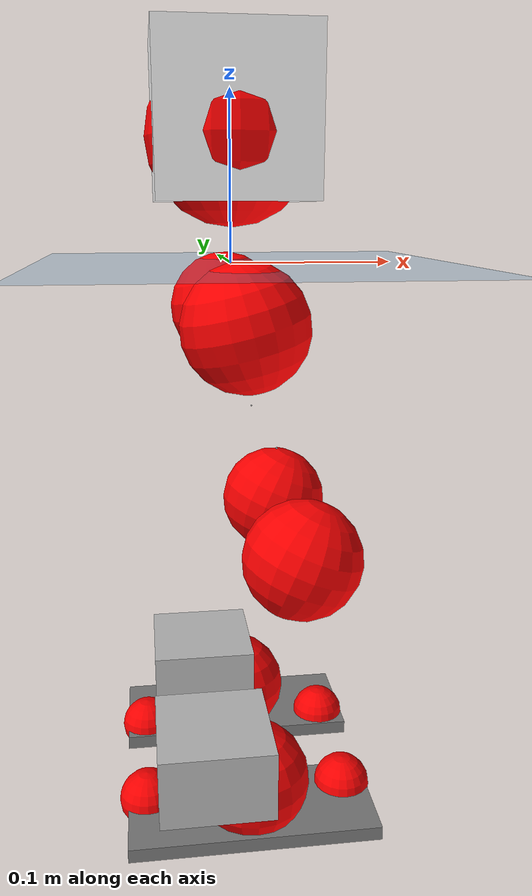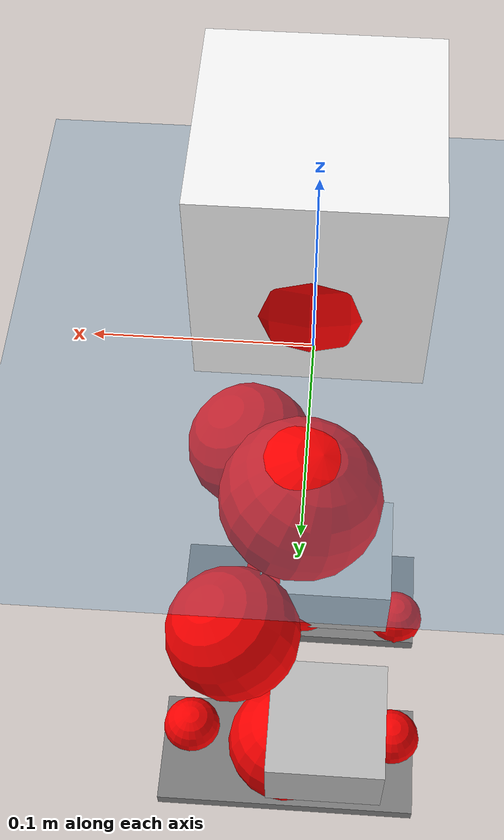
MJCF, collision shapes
<mujoco model="pi_12dof_release_v1">
  <compiler angle="radian" assetdir="assets" balanceinertia="true" inertiafromgeom="false"/>

  <option timestep="0.005" density="1.2" viscosity="2e-05"/>

  <size nkey="1"/>

  <visual>
    <quality shadowsize="8192"/>
    <map shadowclip="0.5"/>
  </visual>

  <default>
    <default class="/">
      <joint armature="0.01" damping="0.01" frictionloss="0.01"/>
      <geom contype="0" conaffinity="0" group="1" solref="-1000 -80"/>
      <site size="0.01 0.005 0.005" group="5"/>
      <general forcelimited="true" biastype="affine" gainprm="20" biasprm="0 -20 -0.5"/>
      <default class="foot">
        <geom size="0.0845 0.036 0.005" type="box" condim="6" group="4" priority="1" friction="0.9 0.2 0.2" solimp="0.015 1 0.005"/>
      </default>
      <default class="reward_collision_sphere">
        <geom group="5" rgba="1 0 0 1"/>
      </default>
    </default>
  </default>

  <asset>
    <texture type="skybox" colorspace="auto" name="//unnamed_texture_0" builtin="gradient" rgb1="0.95 0.95 0.95" rgb2="0.95 0.95 0.95" width="100" height="600"/>
    <texture type="2d" colorspace="auto" name="texplane" builtin="checker" rgb1="0.345 0.575 0.748" rgb2="0.345 0.575 0.748" markrgb="1 1 1" width="512" height="512"/>
    <material name="MatPlane" class="/" texture="texplane" texuniform="true" texrepeat="2 2" specular="0.9"/>
    <mesh name="baselink_1" class="/" file="baselink_1.STL"/>
    <mesh name="r_hip_pitch_link" class="/" file="r_hip_pitch_link.STL"/>
    <mesh name="r_hip_roll_link" class="/" file="r_hip_roll_link.STL"/>
    <mesh name="r_thigh_link" class="/" file="r_thigh_link.STL"/>
    <mesh name="r_calf_link" class="/" file="r_calf_link.STL"/>
    <mesh name="r_ankle_pitch_link" class="/" file="r_ankle_pitch_link.STL"/>
    <mesh name="r_ankle_roll_link" class="/" file="r_ankle_roll_link.STL"/>
    <mesh name="l_hip_pitch_link" class="/" file="l_hip_pitch_link.STL"/>
    <mesh name="l_hip_roll_link" class="/" file="l_hip_roll_link.STL"/>
    <mesh name="l_thigh_link" class="/" file="l_thigh_link.STL"/>
    <mesh name="l_calf_link" class="/" file="l_calf_link.STL"/>
    <mesh name="l_ankle_pitch_link" class="/" file="l_ankle_pitch_link.STL"/>
    <mesh name="l_ankle_roll_link" class="/" file="l_ankle_roll_link.STL"/>
  </asset>

  <worldbody>
    <geom name="floor" class="/" size="100 100 0.125" type="plane" group="0" material="MatPlane"/>
    <light name="toplight_shadow" class="/" pos="0 0 5" dir="0.0990148 0.0990148 -0.990148" type="directional" ambient="0.04 0.04 0.04" diffuse="0.55 0.55 0.55" specular="0.12 0.12 0.12"/>
    <light name="toplight_fill" class="/" pos="0 0 5" dir="0.0990148 0.0990148 -0.990148" type="directional" castshadow="false" ambient="0.04 0.04 0.04" diffuse="0.3 0.3 0.3" specular="0.08 0.08 0.08"/>
    <body name="trunk" pos="0.000736498 -0.000741939 7.98692e-05" quat="1 3.01638e-05 1.2621e-05 -9.17614e-05">
      <inertial pos="0.00202979 -0.000453833 0.0418307" quat="0.694124 0.0141036 0.0105001 0.719641" mass="1.74738" diaginertia="0.00910241 0.00271154 0.00500092"/>
      <joint name="//unnamed_joint_0" type="free"/>
      <geom name="//unnamed_geom_1" class="/" type="mesh" density="0" rgba="1 1 1 1" mesh="baselink_1"/>
      <geom name="//unnamed_geom_2" class="/" size="0.0467797 0.0467797 0.0467797" pos="0 0 0.082915" type="box" rgba="1 1 1 1"/>
      <geom name="//unnamed_geom_3" class="reward_collision_sphere" size="0.0514577" pos="0 0 0.0725506"/>
      <site name="imu" class="/" pos="-0.00016533 -0.00240844 -0.00673159" size="0.00935594"/>
      <camera name="track" class="/" pos="0 -1.57427 0" quat="0.707107 0.707107 0 0" mode="trackcom"/>
      <camera name="ego_camera" class="/" pos="0.0737407 0 0.186559" quat="-0.5 -0.5 0.5 0.5"/>
      <body name="r_hip_pitch_link" pos="0.000491713 -0.0175225 -0.0331418" quat="0.992207 -0.000403322 -0.124604 1.31169e-05">
        <inertial pos="1.23591e-05 -0.0431454 -8.32372e-06" quat="-0.019708 0.705817 -0.0280887 0.707563" mass="0.302881" diaginertia="9.96362e-05 2.98866e-05 9.92381e-05"/>
        <joint name="r_hip_pitch_joint" class="/" pos="0 0 0" axis="0.00031388 -0.999967 -0.00813104" range="-1.7252 1.237" armature="0.00933899" damping="0.0188389" frictionloss="0.00931689"/>
        <geom name="//unnamed_geom_4" class="/" type="mesh" density="0" rgba="0.75294 0.75294 0.75294 1" mesh="r_hip_pitch_link"/>
        <geom name="//unnamed_geom_5" class="/" size="0.000467797 0.000467797 0.000467797" type="box" rgba="0.75294 0.75294 0.75294 1"/>
        <body name="r_hip_roll_link" pos="0.000889224 -0.0437296 0.000645043" quat="1 8.75467e-05 -0.000398665 0.000247758">
          <inertial pos="-0.00126024 -0.000437382 -0.0654621" quat="0.709093 -0.079635 -0.0807673 0.695933" mass="0.318961" diaginertia="0.000307973 8.4614e-05 0.000155048"/>
          <joint name="r_hip_roll_joint" class="/" pos="0 0 0" axis="-0.999999 -0.00101214 -0.000181394" range="-0.109422 0.507245" armature="0.00908057" damping="0.0110872" frictionloss="0.00952078"/>
          <geom name="//unnamed_geom_6" class="/" type="mesh" density="0" rgba="0.75294 0.75294 0.75294 1" mesh="r_hip_roll_link"/>
          <geom name="//unnamed_geom_7" class="/" size="0.000467797 0.000467797 0.000467797" type="box" rgba="0.75294 0.75294 0.75294 1"/>
          <geom name="//unnamed_geom_8" class="reward_collision_sphere" size="0.0374237"/>
          <body name="r_thigh_link" pos="-0.000216945 -0.000757992 -0.0720287" quat="1 -2.75503e-05 5.4939e-05 -9.80148e-05">
            <inertial pos="-0.000613708 0.00110086 -0.0490826" quat="0.737454 0.675375 -0.00274894 -0.00477973" mass="0.0903893" diaginertia="0.00011385 2.83475e-05 6.82404e-05"/>
            <joint name="r_thigh_joint" class="/" pos="0 0 0" axis="0.00123615 0.00175525 -0.999998" range="-0.309173 0.61864" armature="0.00945065" damping="0.00470777" frictionloss="0.00979904"/>
            <geom name="//unnamed_geom_9" class="/" type="mesh" density="0" rgba="0.75294 0.75294 0.75294 1" mesh="r_thigh_link"/>
            <geom name="//unnamed_geom_10" class="/" size="0.000467797 0.000467797 0.000467797" type="box" rgba="0.75294 0.75294 0.75294 1"/>
            <body name="r_calf_link" pos="-0.0015755 6.56241e-05 -0.0732271" quat="0.947657 -2.05304e-06 0.319291 1.95792e-05">
              <inertial pos="0.000893545 -0.00119131 -0.073577" quat="0.999989 0.000836833 0.00095305 0.0046037" mass="0.680992" diaginertia="0.00329448 0.00108258 0.000212175"/>
              <joint name="r_calf_joint" class="/" pos="0 0 0" axis="0.00274885 -0.999964 0.00806648" range="-1.65348 0.647502" armature="0.00892458" damping="0.00731971" frictionloss="0.00910895"/>
              <geom name="//unnamed_geom_11" class="/" type="mesh" density="0" rgba="0.75294 0.75294 0.75294 1" mesh="r_calf_link"/>
              <geom name="//unnamed_geom_12" class="/" size="0.000467797 0.000467797 0.000467797" type="box" rgba="0.75294 0.75294 0.75294 1"/>
              <geom name="//unnamed_geom_13" class="reward_collision_sphere" size="0.0374237"/>
              <body name="r_ankle_pitch_link" pos="0.000722498 0.00143636 -0.145711" quat="0.980056 -3.25022e-05 -0.198719 -7.54779e-06">
                <inertial pos="0.00572751 0.00470271 -1.91824e-05" quat="0.00237295 0.707027 -0.00243437 0.707179" mass="0.14323" diaginertia="0.000280466 6.70989e-05 0.00014249"/>
                <joint name="r_ankle_pitch_joint" class="/" pos="0 0 0" axis="-0.00109192 -0.999998 0.00193149" range="-1.31524 0.500584" armature="0.0091892" damping="0.00465769" frictionloss="0.00954514"/>
                <geom name="//unnamed_geom_14" class="/" type="mesh" density="0" rgba="0.75294 0.75294 0.75294 1" mesh="r_ankle_pitch_link"/>
                <geom name="//unnamed_geom_15" class="/" size="0.0364882 0.0374237 0.0233898" type="box" rgba="0.75294 0.75294 0.75294 1"/>
                <body name="r_ankle_roll_link" pos="0.0744986 0.00174561 0.000692946" quat="1 -0.00063505 -1.65795e-05 -0.000479326">
                  <inertial pos="-0.0217656 0.000841194 -0.0148388" quat="0.561679 0.43089 0.432501 0.558384" mass="0.420222" diaginertia="0.00102044 0.000311463 0.000342813"/>
                  <joint name="r_ankle_roll_joint" class="/" pos="0 0 0" axis="-0.999979 -0.00655187 -5.4824e-05" range="-0.148613 0.140594" armature="0.00940435" damping="0.0125429" frictionloss="0.00911008"/>
                  <geom name="//unnamed_geom_16" class="/" type="mesh" density="0" rgba="0.75294 0.75294 0.75294 1" mesh="r_ankle_roll_link"/>
                  <geom name="//unnamed_geom_17" class="/" type="mesh" rgba="0.75294 0.75294 0.75294 1" mesh="r_ankle_roll_link"/>
                  <geom name="right_foot" class="foot" size="0.0807478 0.0341827 0.00461312" pos="-0.0501437 0 -0.0456033"/>
                  <geom name="//unnamed_geom_19" class="reward_collision_sphere" size="0.0374237" pos="-0.0491605 0 -0.0207288"/>
                  <geom name="//unnamed_geom_20" class="reward_collision_sphere" size="0.0187119" pos="0.0147481 0.0157427 -0.0414575"/>
                  <geom name="//unnamed_geom_21" class="reward_collision_sphere" size="0.0187119" pos="-0.117985 0.0157427 -0.0414575"/>
                  <site name="right_foot" class="foot" pos="-0.0501437 0 -0.0456033" size="0.00935594"/>
                </body>
              </body>
            </body>
          </body>
        </body>
      </body>
      <body name="l_hip_pitch_link" pos="0.00165133 0.0185856 -0.0339917" quat="0.992184 -8.46705e-05 -0.12478 0.000175193">
        <inertial pos="0.00202112 0.0405348 -0.000270873" quat="-0.0374988 0.703843 0.0294991 0.708751" mass="0.322426" diaginertia="0.000117683 3.16766e-05 0.000119558"/>
        <joint name="l_hip_pitch_joint" class="/" pos="0 0 0" axis="-0.00825834 0.999964 0.00167524" range="-1.26709 1.76323" armature="0.00873915" damping="0.0137845" frictionloss="0.00890151"/>
        <geom name="//unnamed_geom_22" class="/" type="mesh" density="0" rgba="0.75294 0.75294 0.75294 1" mesh="l_hip_pitch_link"/>
        <geom name="//unnamed_geom_23" class="/" size="0.000467797 0.000467797 0.000467797" type="box" rgba="0.75294 0.75294 0.75294 1"/>
        <body name="l_hip_roll_link" pos="-0.000573209 0.0433044 0.000447623" quat="1 -0.000173659 -0.000389128 0.0002462">
          <inertial pos="-0.00189801 0.00136261 -0.0634727" quat="0.699441 -0.0753211 -0.078283 0.706386" mass="0.318215" diaginertia="0.000306969 8.32919e-05 0.000149848"/>
          <joint name="l_hip_roll_joint" class="/" pos="0 0 0" axis="-0.999982 0.00565713 -0.00203623" range="-0.510174 0.0992101" armature="0.00946173" damping="0.00627176" frictionloss="0.009779"/>
          <geom name="//unnamed_geom_24" class="/" type="mesh" density="0" rgba="0.75294 0.75294 0.75294 1" mesh="l_hip_roll_link"/>
          <geom name="//unnamed_geom_25" class="/" size="0.000467797 0.000467797 0.000467797" type="box" rgba="0.75294 0.75294 0.75294 1"/>
          <geom name="//unnamed_geom_26" class="reward_collision_sphere" size="0.0374237"/>
          <body name="l_thigh_link" pos="0.000371191 0.000141468 -0.0735085" quat="1 -0.000507384 0.000502893 -0.00020402">
            <inertial pos="0.000918734 -0.00154325 -0.0476113" quat="0.673537 0.739142 -0.00367975 0.00171061" mass="0.0914945" diaginertia="0.000115466 2.90142e-05 6.92381e-05"/>
            <joint name="l_thigh_joint" class="/" pos="0 0 0" axis="-0.000731324 0.00120535 -0.999999" range="-0.625527 0.288287" armature="0.0094543" damping="0" frictionloss="0.00944142"/>
            <geom name="//unnamed_geom_27" class="/" type="mesh" density="0" rgba="0.75294 0.75294 0.75294 1" mesh="l_thigh_link"/>
            <geom name="//unnamed_geom_28" class="/" size="0.000467797 0.000467797 0.000467797" type="box" rgba="0.75294 0.75294 0.75294 1"/>
            <body name="l_calf_link" pos="-0.00171225 -0.00055094 -0.0724302" quat="0.947563 2.46554e-06 0.319569 5.17542e-05">
              <inertial pos="-0.00021007 0.00138129 -0.0728811" quat="0.999991 0.00294429 0.00305949 -0.000823803" mass="0.661697" diaginertia="0.00317882 0.00104205 0.000205439"/>
              <joint name="l_calf_joint" class="/" pos="0 0 0" axis="0.00475109 0.999984 -0.00321593" range="-0.659563 1.63816" armature="0.00943004" damping="0.00827486" frictionloss="0.00920733"/>
              <geom name="//unnamed_geom_29" class="/" type="mesh" density="0" rgba="0.75294 0.75294 0.75294 1" mesh="l_calf_link"/>
              <geom name="//unnamed_geom_30" class="/" size="0.000467797 0.000467797 0.000467797" type="box" rgba="0.75294 0.75294 0.75294 1"/>
              <geom name="//unnamed_geom_31" class="reward_collision_sphere" size="0.0374237"/>
              <body name="l_ankle_pitch_link" pos="0.000765322 0.000369343 -0.144262" quat="0.980081 0.000263884 -0.1986 -6.94712e-05">
                <inertial pos="0.00447695 -0.000744197 2.12108e-05" quat="0.00571994 0.707395 -0.000518305 0.706795" mass="0.143978" diaginertia="0.000284266 6.73492e-05 0.000146596"/>
                <joint name="l_ankle_pitch_joint" class="/" pos="0 0 0" axis="0.000985917 0.999992 -0.00374608" range="-0.518702 1.28954" armature="0.00940348" damping="0.000813539" frictionloss="0.00957535"/>
                <geom name="//unnamed_geom_32" class="/" type="mesh" density="0" rgba="0.75294 0.75294 0.75294 1" mesh="l_ankle_pitch_link"/>
                <geom name="//unnamed_geom_33" class="/" size="0.0364882 0.0374237 0.0233898" type="box" rgba="0.75294 0.75294 0.75294 1"/>
                <body name="l_ankle_roll_link" pos="0.0745591 2.56737e-05 0.000129853" quat="1 4.0454e-05 8.72391e-07 -4.26973e-05">
                  <inertial pos="-0.0251637 -0.002117 -0.0138629" quat="0.559333 0.431308 0.433761 0.559439" mass="0.425656" diaginertia="0.00104505 0.000312809 0.000337264"/>
                  <joint name="l_ankle_roll_joint" class="/" pos="0 0 0" axis="-1 0.000557192 9.30537e-06" range="-0.14651 0.167621" armature="0.00959229" damping="0.0128841" frictionloss="0.00965328"/>
                  <geom name="//unnamed_geom_34" class="/" type="mesh" density="0" rgba="0.75294 0.75294 0.75294 1" mesh="l_ankle_roll_link"/>
                  <geom name="//unnamed_geom_35" class="/" type="mesh" rgba="0.75294 0.75294 0.75294 1" mesh="l_ankle_roll_link"/>
                  <geom name="left_foot" class="foot" size="0.0825626 0.0355777 0.00475423" pos="-0.0501437 0 -0.0456033"/>
                  <geom name="//unnamed_geom_37" class="reward_collision_sphere" size="0.0374237" pos="-0.0491605 0 -0.0207288"/>
                  <geom name="//unnamed_geom_38" class="reward_collision_sphere" size="0.0187119" pos="0.0147481 -0.0157427 -0.0414575"/>
                  <geom name="//unnamed_geom_39" class="reward_collision_sphere" size="0.0187119" pos="-0.117985 -0.0157427 -0.0414575"/>
                  <site name="left_foot" class="foot" pos="-0.0501437 0 -0.0456033" size="0.00935594"/>
                </body>
              </body>
            </body>
          </body>
        </body>
      </body>
    </body>
  </worldbody>

  <contact>
    <pair class="/" geom1="floor" geom2="right_foot" name="//unnamed_contact_1"/>
    <pair class="/" geom1="floor" geom2="left_foot" name="//unnamed_contact_0"/>
  </contact>

  <actuator>
    <general name="r_hip_pitch_joint" class="/" joint="r_hip_pitch_joint" forcerange="-18.9764 18.9764" gainprm="18.8881" biasprm="0 -18.8881 -0.464563"/>
    <general name="r_hip_roll_joint" class="/" joint="r_hip_roll_joint" forcerange="-20.3486 20.3486" gainprm="18.8881" biasprm="0 -18.8881 -0.464563"/>
    <general name="r_thigh_joint" class="/" joint="r_thigh_joint" forcerange="-20.1903 20.1903" gainprm="18.8881" biasprm="0 -18.8881 -0.464563"/>
    <general name="r_calf_joint" class="/" joint="r_calf_joint" forcerange="-20.6661 20.6661" gainprm="18.8881" biasprm="0 -18.8881 -0.464563"/>
    <general name="r_ankle_pitch_joint" class="/" joint="r_ankle_pitch_joint" forcerange="-19.6222 19.6222" gainprm="18.8881" biasprm="0 -18.8881 -0.464563"/>
    <general name="r_ankle_roll_joint" class="/" joint="r_ankle_roll_joint" forcerange="-19.4962 19.4962" gainprm="18.8881" biasprm="0 -18.8881 -0.464563"/>
    <general name="l_hip_pitch_joint" class="/" joint="l_hip_pitch_joint" forcerange="-19.5965 19.5965" gainprm="18.8881" biasprm="0 -18.8881 -0.464563"/>
    <general name="l_hip_roll_joint" class="/" joint="l_hip_roll_joint" forcerange="-19.4293 19.4293" gainprm="18.8881" biasprm="0 -18.8881 -0.464563"/>
    <general name="l_thigh_joint" class="/" joint="l_thigh_joint" forcerange="-18.9936 18.9936" gainprm="18.8881" biasprm="0 -18.8881 -0.464563"/>
    <general name="l_calf_joint" class="/" joint="l_calf_joint" forcerange="-19.6963 19.6963" gainprm="18.8881" biasprm="0 -18.8881 -0.464563"/>
    <general name="l_ankle_pitch_joint" class="/" joint="l_ankle_pitch_joint" forcerange="-19.9066 19.9066" gainprm="18.8881" biasprm="0 -18.8881 -0.464563"/>
    <general name="l_ankle_roll_joint" class="/" joint="l_ankle_roll_joint" forcerange="-18.9922 18.9922" gainprm="18.8881" biasprm="0 -18.8881 -0.464563"/>
  </actuator>

  <sensor>
    <gyro site="imu" name="imu_angular_velocity"/>
    <velocimeter site="imu" name="imu_linear_velocity"/>
    <framelinvel objtype="site" objname="left_foot" name="left_foot_global_linear_velocity"/>
    <framelinvel objtype="site" objname="right_foot" name="right_foot_global_linear_velocity"/>
  </sensor>

  <keyframe>
    <key name="home" qpos="0 0 0.291 1 0 0 0 0.4 0 0 -0.8 0.4 0 -0.4 0 0 0.8 -0.4 0"/>
  </keyframe>
</mujoco>
